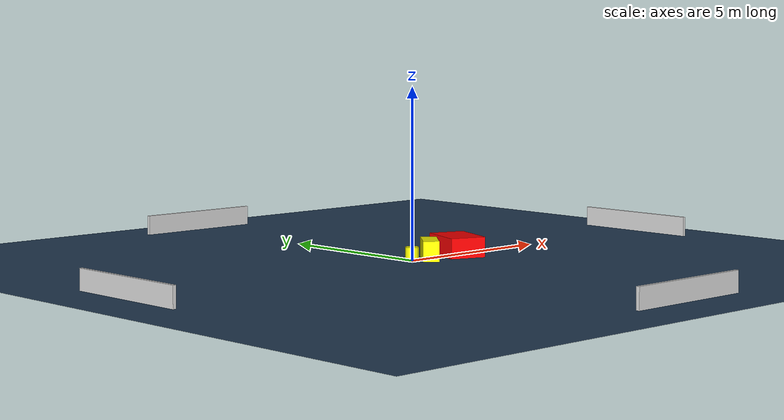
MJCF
<?xml version="1.0" ?>
<mujoco model="generated_environment">
  <option timestep="0.01" integrator="RK4" cone="elliptic"/>
  <default>
    <geom density="1"/>
  </default>
  <asset>
    <texture builtin="gradient" height="3072" name="skybox" rgb1="0.3 0.5 0.7" rgb2="0 0 0" type="skybox" width="512"/>
    <texture builtin="checker" height="300" name="groundplane" rgb1="0.2 0.3 0.4" rgb2="0.1 0.2 0.3" type="2d" width="300"/>
    <material name="groundplane" reflectance="0.2" texrepeat="5 5" texture="groundplane"/>
  </asset>
  <worldbody>
    <light dir="0 0 -1" directional="true" pos="0 0 1.5"/>
    <geom condim="3" friction="0.5 0.005 0.001" material="groundplane" name="floor" pos="0 0 0" size="0 0 0.05" type="plane"/>
    <body name="walls">
      <geom name="wall_1" condim="4" pos="-10.0 0.0 0.3" rgba="0.800000011920929 0.800000011920929 0.800000011920929 1.0" size="0.05 2.0 0.3" type="box"/>
      <geom name="wall_2" condim="4" pos="10.0 0.0 0.3" rgba="0.800000011920929 0.800000011920929 0.800000011920929 1.0" size="0.05 2.0 0.3" type="box"/>
      <geom name="wall_3" condim="4" pos="0.0 -10.0 0.3" rgba="0.800000011920929 0.800000011920929 0.800000011920929 1.0" size="2.0 0.05 0.3" type="box"/>
      <geom name="wall_4" condim="4" pos="0.0 10.0 0.3" rgba="0.800000011920929 0.800000011920929 0.800000011920929 1.0" size="2.0 0.05 0.3" type="box"/>
    </body>
    <body name="robot">
      <joint name="joint_x" type="slide" pos="0 0 0" axis="1 0 0"/>
      <joint name="joint_y" type="slide" pos="0 0 0" axis="0 1 0"/>
      <geom name="robot" type="cylinder" pos="0.0 0.0 0.2" size="0.2 0.2 0.0" mass="5.0" friction="1.0 0.005 0.0001" condim="4" rgba="1.0 1.0 0.0 1.0"/>
    </body>
    <body name="obstacle_1_movable">
      <geom name="obstacle_1_movable" condim="4" pos="0.5283735218586718 -0.18044129579111476 0.3" euler="0 0 230.1620834487764" friction="0.0 0.005 0.001" rgba="1.0 1.0 0.0 1.0" size="0.5411324389283059 0.234562647561739 0.3" type="box" mass="0.1"/>
      <joint type="free"/>
    </body>
    <body name="obstacle_2_static">
      <geom name="obstacle_2_static" condim="4" pos="1.7516235569259404 -0.08427047296863432 0.3" euler="0 0 70.45973769468301" friction="0.0 0.005 0.001" rgba="1.0 0.0 0.0 1.0" size="0.7430429362178743 0.5433887503254072 0.3" type="box"/>
    </body>
  </worldbody>
  <actuator>
    <motor name="actuator_x" joint="joint_x" gear="1" ctrlrange="-1 1"/>
    <motor name="actuator_y" joint="joint_y" gear="1" ctrlrange="-1 1"/>
  </actuator>
</mujoco>
